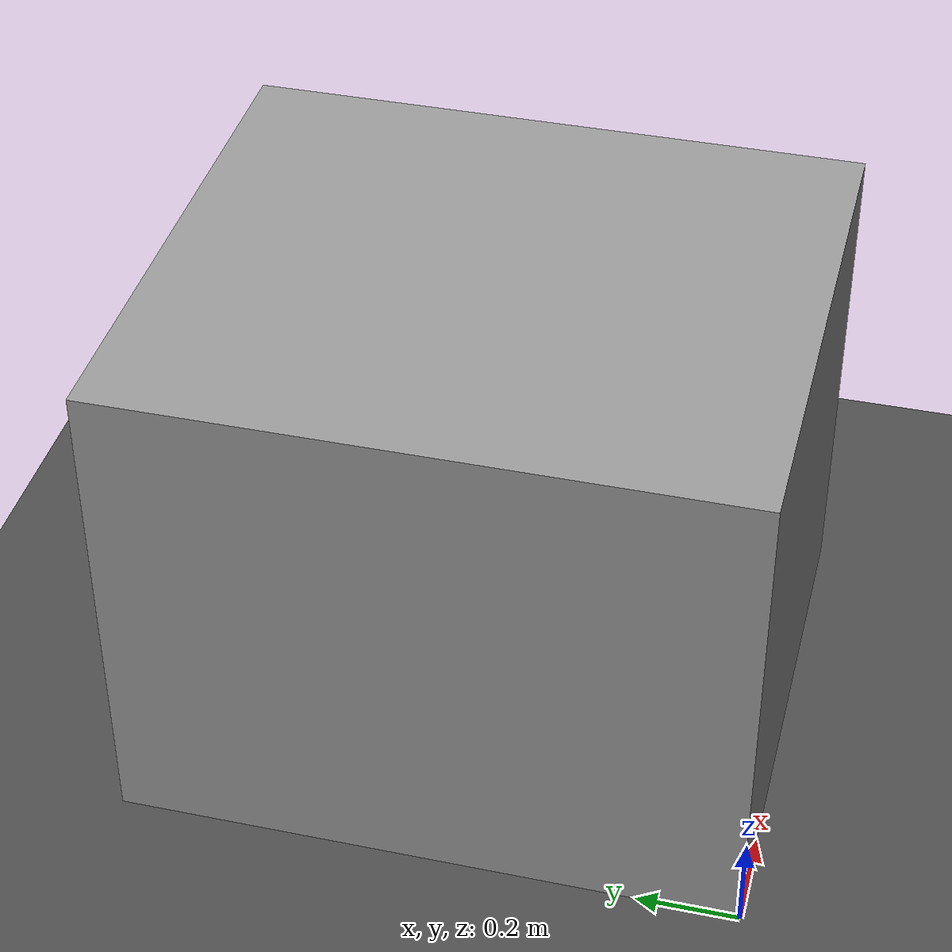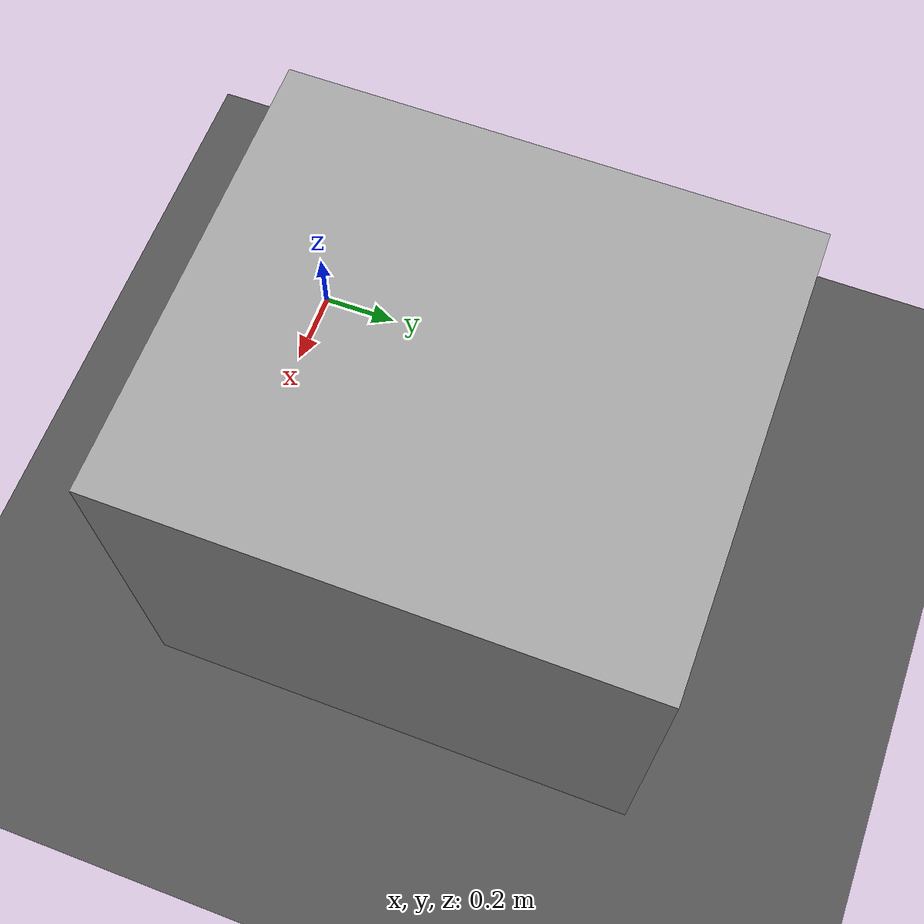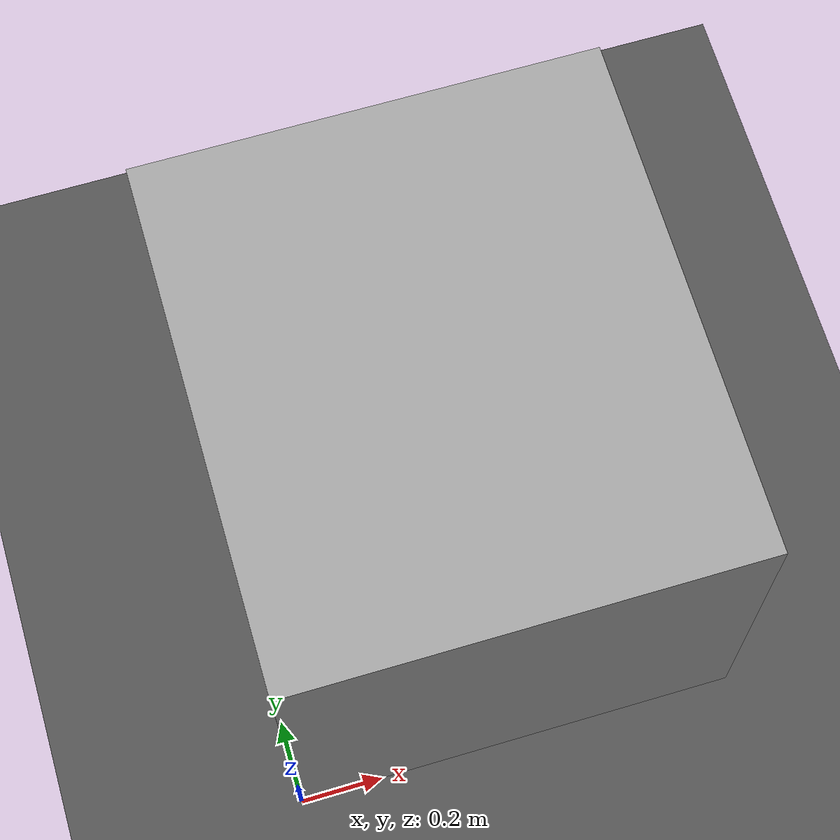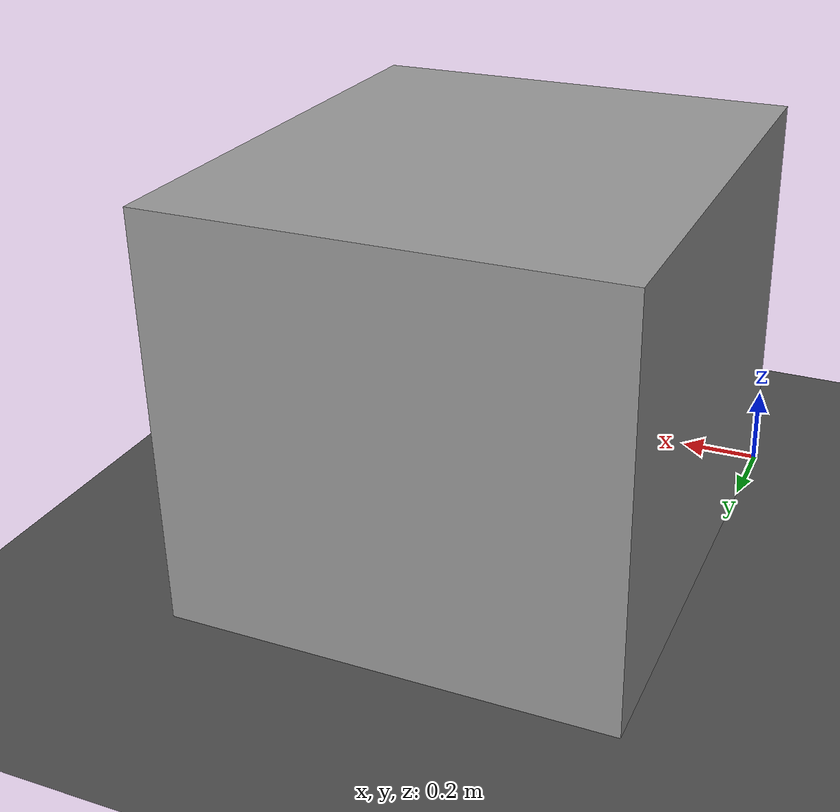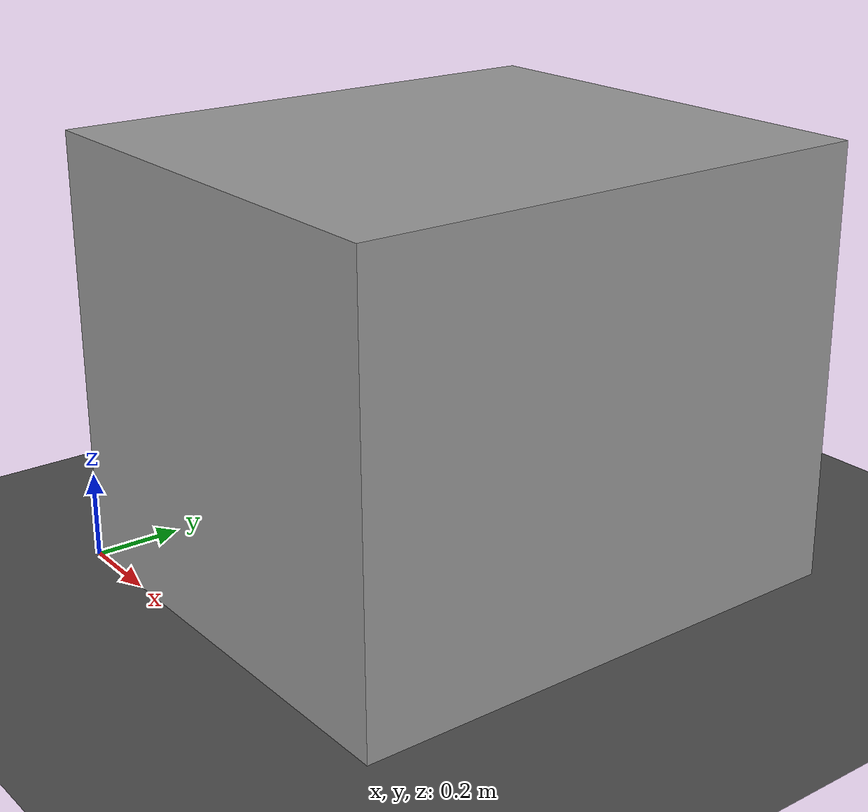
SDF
<sdf version="1.7">
 <world name="default">
  <physics type="ode">
   <max_step_size>0.001</max_step_size>
   <real_time_factor>1</real_time_factor>
   <real_time_update_rate>1000</real_time_update_rate>
  </physics>
  <scene><ambient>0.6 0.6 0.6 1</ambient><background>0.9 0.9 0.9 1</background><grid>0</grid></scene>
  <light name="light" type="directional"><pose>4 4 4 0 0 0</pose><direction>1e-6 1e-6 -1</direction></light>
  <model name="floor">
   <pose>4 4 0 0 0 0</pose>
   <static>1</static>
   <link name="link">
    <visual name="visual">
     <geometry><plane><normal>0 0 1</normal><size>10 10</size></plane></geometry>
     <material>
      <script><uri>file://media/materials/scripts/gazebo.material</uri><name>Gazebo/DarkGrey</name></script>
     </material>
    </visual>
    <collision name="collision">
     <geometry><plane><normal>0 0 1</normal><size>10 10</size></plane></geometry>
    </collision>
   </link>
  </model>
  <model name="desk">
   <pose>0.54 0.615 0.5 0 0 0</pose>
   <static>1</static>
   <link name="link">
    <visual name="visual">
     <geometry><box><size>1.08 1.23 1</size></box></geometry>
     <material>
      <script><uri>file://media/materials/scripts/gazebo.material</uri><name>material Gazebo/Grey</name></script>
     </material>
    </visual>
    <collision name="collision"><geometry><box><size>1.08 1.23 1</size></box></geometry></collision>
   </link>
  </model>
 </world>
</sdf>
